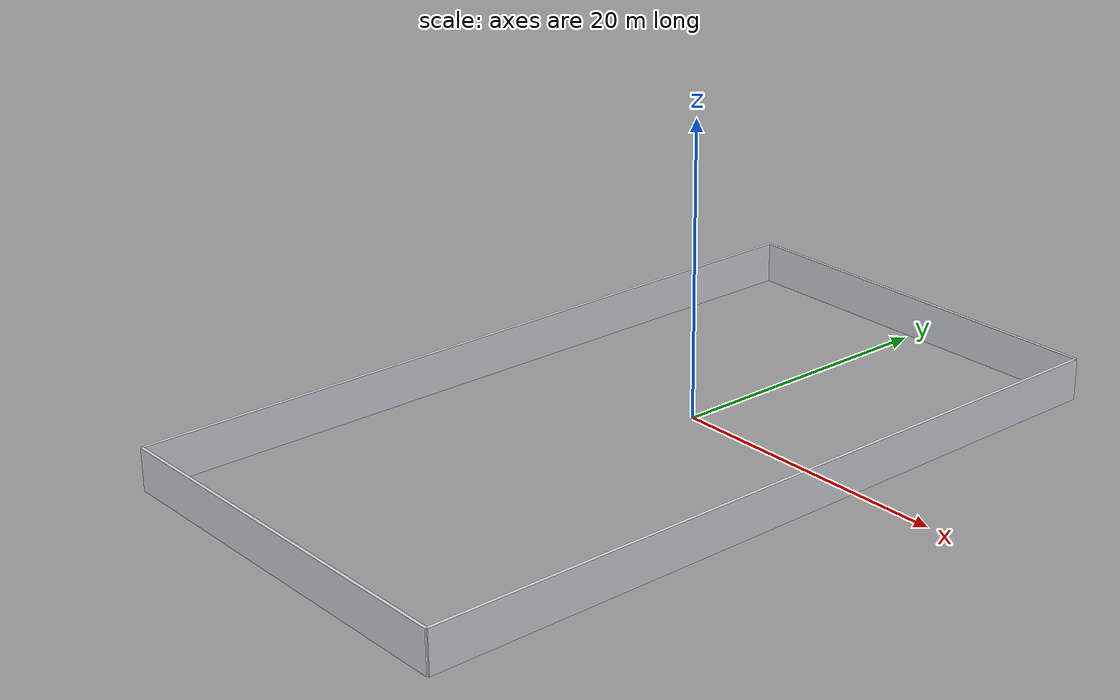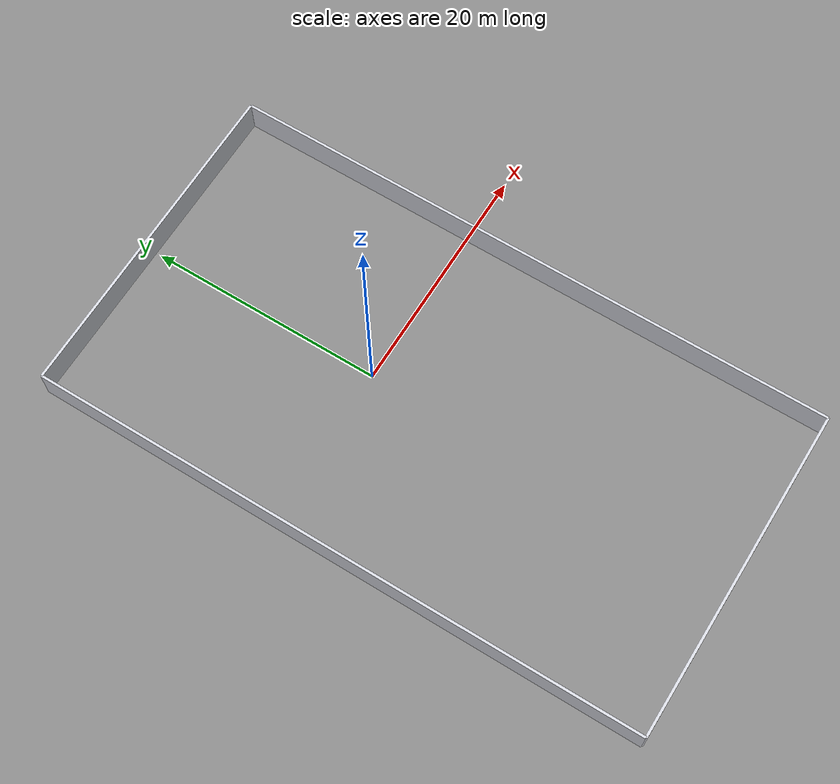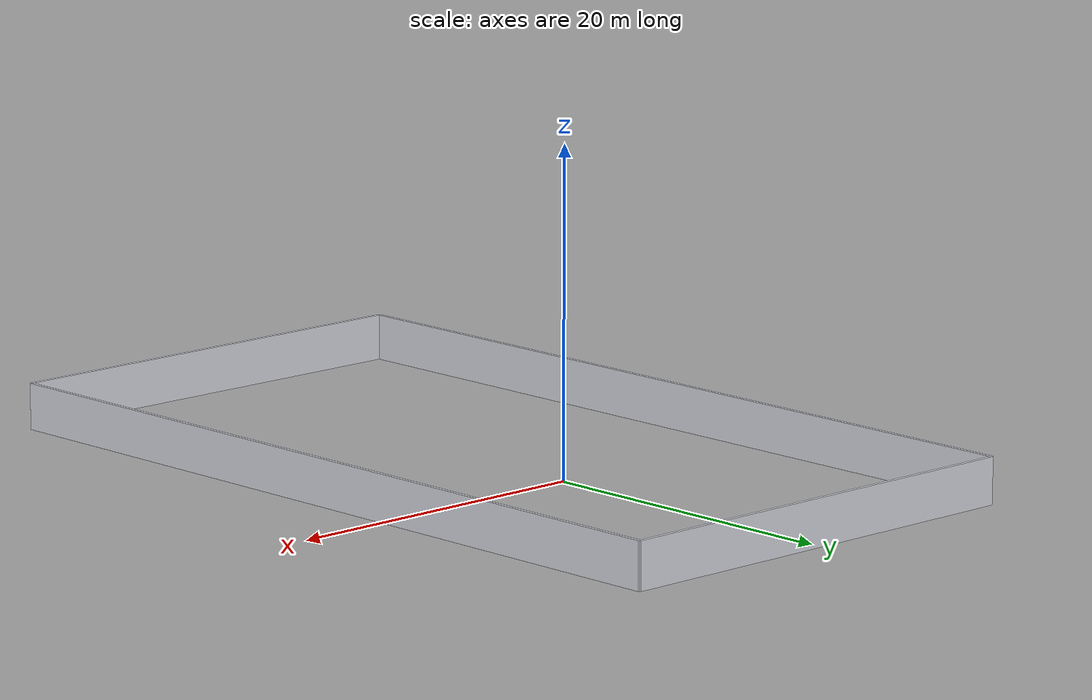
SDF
<?xml version="1.0"?>
<sdf version="1.6">
  <model name="clinic_wall_shell">
    <static>true</static>

  <link name="wall_n">
    <pose>0 20.61 1.425 0 0 0</pose>
    <collision name="c"><geometry><box><size>28.22 0.22 2.85</size></box></geometry></collision>
    <visual name="v"><geometry><box><size>28.22 0.22 2.85</size></box></geometry><material><ambient>0.82 0.83 0.86 1</ambient><diffuse>0.82 0.83 0.86 1</diffuse></material></visual>
  </link>
  <link name="wall_s">
    <pose>0 -31.61 1.425 0 0 0</pose>
    <collision name="c"><geometry><box><size>28.22 0.22 2.85</size></box></geometry></collision>
    <visual name="v"><geometry><box><size>28.22 0.22 2.85</size></box></geometry><material><ambient>0.82 0.83 0.86 1</ambient><diffuse>0.82 0.83 0.86 1</diffuse></material></visual>
  </link>
  <link name="wall_e">
    <pose>14.11 -5.5 1.425 0 0 0</pose>
    <collision name="c"><geometry><box><size>0.22 52.22 2.85</size></box></geometry></collision>
    <visual name="v"><geometry><box><size>0.22 52.22 2.85</size></box></geometry><material><ambient>0.82 0.83 0.86 1</ambient><diffuse>0.82 0.83 0.86 1</diffuse></material></visual>
  </link>
  <link name="wall_w">
    <pose>-14.11 -5.5 1.425 0 0 0</pose>
    <collision name="c"><geometry><box><size>0.22 52.22 2.85</size></box></geometry></collision>
    <visual name="v"><geometry><box><size>0.22 52.22 2.85</size></box></geometry><material><ambient>0.82 0.83 0.86 1</ambient><diffuse>0.82 0.83 0.86 1</diffuse></material></visual>
  </link>
  </model>
</sdf>
